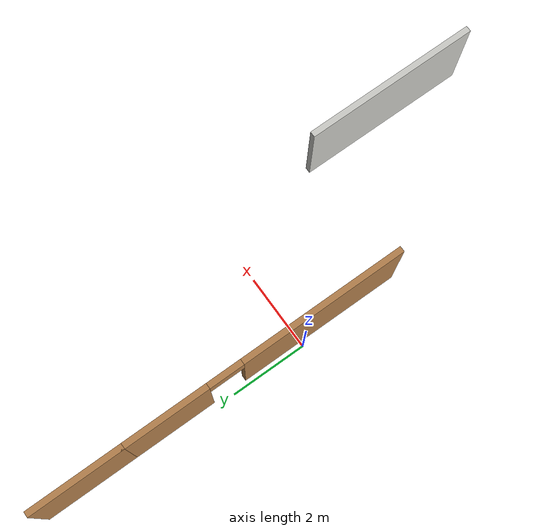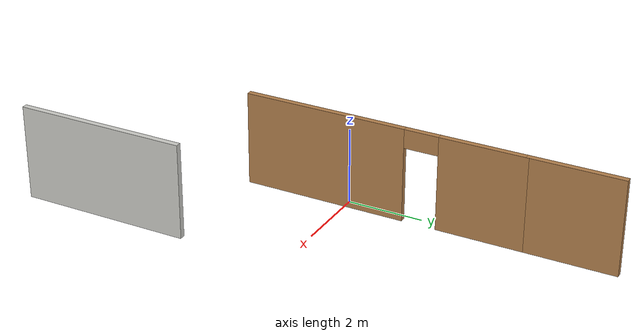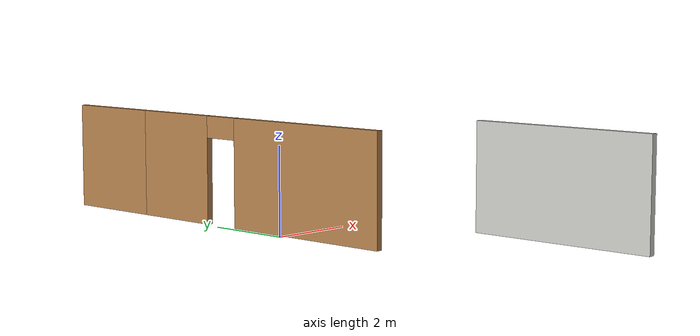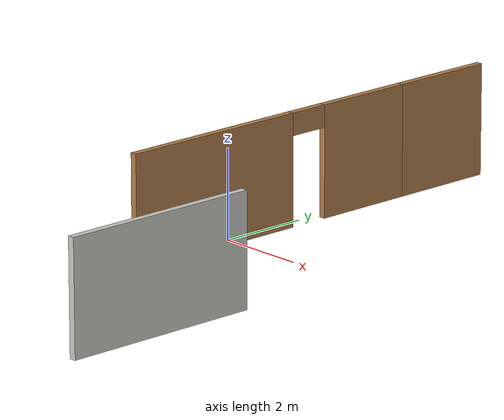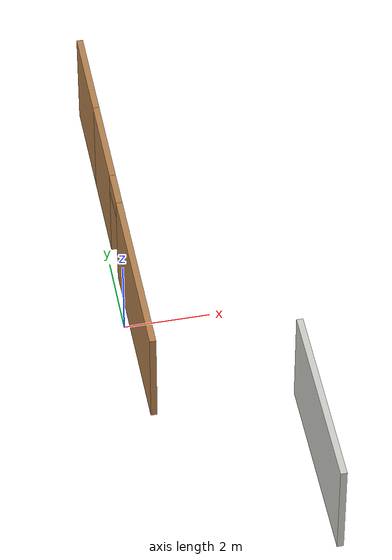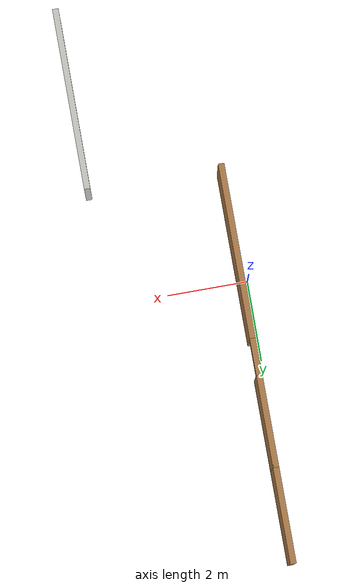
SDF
<?xml version='1.0'?>
<sdf version='1.7'>
  <model name='models'>
    <link name='Wall_23'>
      <pose>0.198577 5.89558 0 0 -0 1.5708</pose>
      <self_collide>0</self_collide>
      <enable_wind>0</enable_wind>
      <kinematic>0</kinematic>
      <inertial>
        <inertia>
          <ixx>0</ixx>
          <ixy>0</ixy>
          <ixz>0</ixz>
          <iyy>0</iyy>
          <iyz>0</iyz>
          <izz>0</izz>
        </inertia>
        <mass>0</mass>
        <pose>0 0 0 0 -0 0</pose>
      </inertial>
      <visual name='Wall_23_Visual'>
        <pose>0 0 1.25 0 -0 0</pose>
        <geometry>
          <box>
            <size>2.43974 0.15 2.5</size>
          </box>
        </geometry>
        <material>
          <script>
            <uri>file://media/materials/scripts/gazebo.material</uri>
            <name>Gazebo/Wood</name>
          </script>
          <ambient>1 1 1 1</ambient>
          <shader type='pixel'/>
        </material>
        <meta>
          <layer>0</layer>
        </meta>
        <transparency>0</transparency>
        <cast_shadows>1</cast_shadows>
      </visual>
      <collision name='Wall_23_Collision'>
        <laser_retro>0</laser_retro>
        <max_contacts>10</max_contacts>
        <pose>0 0 1.25 0 -0 0</pose>
        <geometry>
          <box>
            <size>2.43974 0.15 2.5</size>
          </box>
        </geometry>
        <surface>
          <friction>
            <ode>
              <mu>1</mu>
              <mu2>1</mu2>
              <fdir1>0 0 0</fdir1>
              <slip1>0</slip1>
              <slip2>0</slip2>
            </ode>
            <torsional>
              <coefficient>1</coefficient>
              <patch_radius>0</patch_radius>
              <surface_radius>0</surface_radius>
              <use_patch_radius>1</use_patch_radius>
              <ode>
                <slip>0</slip>
              </ode>
            </torsional>
          </friction>
          <bounce>
            <restitution_coefficient>0</restitution_coefficient>
            <threshold>1e+06</threshold>
          </bounce>
          <contact>
            <collide_without_contact>0</collide_without_contact>
            <collide_without_contact_bitmask>1</collide_without_contact_bitmask>
            <collide_bitmask>1</collide_bitmask>
            <ode>
              <soft_cfm>0</soft_cfm>
              <soft_erp>0.2</soft_erp>
              <kp>1e+13</kp>
              <kd>1</kd>
              <max_vel>0.01</max_vel>
              <min_depth>0</min_depth>
            </ode>
            <bullet>
              <split_impulse>1</split_impulse>
              <split_impulse_penetration_threshold>-0.01</split_impulse_penetration_threshold>
              <soft_cfm>0</soft_cfm>
              <soft_erp>0.2</soft_erp>
              <kp>1e+13</kp>
              <kd>1</kd>
            </bullet>
          </contact>
        </surface>
      </collision>
    </link>
    <link name='Wall_30'>
      <pose>3.5114 -4.95073 0 0 0 -1.5708</pose>
      <self_collide>0</self_collide>
      <enable_wind>0</enable_wind>
      <kinematic>0</kinematic>
      <inertial>
        <inertia>
          <ixx>0</ixx>
          <ixy>0</ixy>
          <ixz>0</ixz>
          <iyy>0</iyy>
          <iyz>0</iyz>
          <izz>0</izz>
        </inertia>
        <mass>0</mass>
        <pose>0 0 0 0 -0 0</pose>
      </inertial>
      <visual name='Wall_30_Visual'>
        <pose>0 0 1.25 0 -0 0</pose>
        <geometry>
          <box>
            <size>4.48465 0.15 2.5</size>
          </box>
        </geometry>
        <material>
          <script>
            <uri>file://media/materials/scripts/gazebo.material</uri>
            <name>Gazebo/CeilingTiled</name>
          </script>
          <ambient>1 1 1 1</ambient>
          <shader type='pixel'/>
        </material>
        <meta>
          <layer>0</layer>
        </meta>
        <transparency>0</transparency>
        <cast_shadows>1</cast_shadows>
      </visual>
      <collision name='Wall_30_Collision'>
        <laser_retro>0</laser_retro>
        <max_contacts>10</max_contacts>
        <pose>0 0 1.25 0 -0 0</pose>
        <geometry>
          <box>
            <size>4.48465 0.15 2.5</size>
          </box>
        </geometry>
        <surface>
          <friction>
            <ode>
              <mu>1</mu>
              <mu2>1</mu2>
              <fdir1>0 0 0</fdir1>
              <slip1>0</slip1>
              <slip2>0</slip2>
            </ode>
            <torsional>
              <coefficient>1</coefficient>
              <patch_radius>0</patch_radius>
              <surface_radius>0</surface_radius>
              <use_patch_radius>1</use_patch_radius>
              <ode>
                <slip>0</slip>
              </ode>
            </torsional>
          </friction>
          <bounce>
            <restitution_coefficient>0</restitution_coefficient>
            <threshold>1e+06</threshold>
          </bounce>
          <contact>
            <collide_without_contact>0</collide_without_contact>
            <collide_without_contact_bitmask>1</collide_without_contact_bitmask>
            <collide_bitmask>1</collide_bitmask>
            <ode>
              <soft_cfm>0</soft_cfm>
              <soft_erp>0.2</soft_erp>
              <kp>1e+13</kp>
              <kd>1</kd>
              <max_vel>0.01</max_vel>
              <min_depth>0</min_depth>
            </ode>
            <bullet>
              <split_impulse>1</split_impulse>
              <split_impulse_penetration_threshold>-0.01</split_impulse_penetration_threshold>
              <soft_cfm>0</soft_cfm>
              <soft_erp>0.2</soft_erp>
              <kp>1e+13</kp>
              <kd>1</kd>
            </bullet>
          </contact>
        </surface>
      </collision>
    </link>
    <link name='Wall_32'>
      <pose>0.198575 1.00599 0 0 0 -1.5708</pose>
      <self_collide>0</self_collide>
      <enable_wind>0</enable_wind>
      <kinematic>0</kinematic>
      <visual name='Wall_32_Visual_2'>
        <pose>-1.0251 0 2.25 0 -0 0</pose>
        <geometry>
          <box>
            <size>0.9 0.15 0.5</size>
          </box>
        </geometry>
        <material>
          <script>
            <uri>file://media/materials/scripts/gazebo.material</uri>
            <name>Gazebo/Wood</name>
          </script>
          <ambient>0.996078 0.47451 0.0196078 1</ambient>
          <shader type='pixel'/>
        </material>
        <meta>
          <layer>0</layer>
        </meta>
        <transparency>0</transparency>
        <cast_shadows>1</cast_shadows>
      </visual>
      <visual name='Wall_32_Visual_0'>
        <pose>-2.61255 0 1.25 0 -0 0</pose>
        <geometry>
          <box>
            <size>2.2749 0.15 2.5</size>
          </box>
        </geometry>
        <material>
          <script>
            <uri>file://media/materials/scripts/gazebo.material</uri>
            <name>Gazebo/Wood</name>
          </script>
          <ambient>0.996078 0.47451 0.0196078 1</ambient>
          <shader type='pixel'/>
        </material>
        <meta>
          <layer>0</layer>
        </meta>
        <transparency>0</transparency>
        <cast_shadows>1</cast_shadows>
      </visual>
      <visual name='Wall_32_Visual_1'>
        <pose>1.58745 0 1.25 0 -0 0</pose>
        <geometry>
          <box>
            <size>4.3251 0.15 2.5</size>
          </box>
        </geometry>
        <material>
          <script>
            <uri>file://media/materials/scripts/gazebo.material</uri>
            <name>Gazebo/Wood</name>
          </script>
          <ambient>0.996078 0.47451 0.0196078 1</ambient>
          <shader type='pixel'/>
        </material>
        <meta>
          <layer>0</layer>
        </meta>
        <transparency>0</transparency>
        <cast_shadows>1</cast_shadows>
      </visual>
      <collision name='Wall_32_Collision_0'>
        <laser_retro>0</laser_retro>
        <max_contacts>10</max_contacts>
        <pose>-2.61255 0 1.25 0 -0 0</pose>
        <geometry>
          <box>
            <size>2.2749 0.15 2.5</size>
          </box>
        </geometry>
        <surface>
          <friction>
            <ode>
              <mu>1</mu>
              <mu2>1</mu2>
              <fdir1>0 0 0</fdir1>
              <slip1>0</slip1>
              <slip2>0</slip2>
            </ode>
            <torsional>
              <coefficient>1</coefficient>
              <patch_radius>0</patch_radius>
              <surface_radius>0</surface_radius>
              <use_patch_radius>1</use_patch_radius>
              <ode>
                <slip>0</slip>
              </ode>
            </torsional>
          </friction>
          <bounce>
            <restitution_coefficient>0</restitution_coefficient>
            <threshold>1e+06</threshold>
          </bounce>
          <contact>
            <collide_without_contact>0</collide_without_contact>
            <collide_without_contact_bitmask>1</collide_without_contact_bitmask>
            <collide_bitmask>1</collide_bitmask>
            <ode>
              <soft_cfm>0</soft_cfm>
              <soft_erp>0.2</soft_erp>
              <kp>1e+13</kp>
              <kd>1</kd>
              <max_vel>0.01</max_vel>
              <min_depth>0</min_depth>
            </ode>
            <bullet>
              <split_impulse>1</split_impulse>
              <split_impulse_penetration_threshold>-0.01</split_impulse_penetration_threshold>
              <soft_cfm>0</soft_cfm>
              <soft_erp>0.2</soft_erp>
              <kp>1e+13</kp>
              <kd>1</kd>
            </bullet>
          </contact>
        </surface>
      </collision>
      <collision name='Wall_32_Collision_1'>
        <laser_retro>0</laser_retro>
        <max_contacts>10</max_contacts>
        <pose>1.58745 0 1.25 0 -0 0</pose>
        <geometry>
          <box>
            <size>4.3251 0.15 2.5</size>
          </box>
        </geometry>
        <surface>
          <friction>
            <ode>
              <mu>1</mu>
              <mu2>1</mu2>
              <fdir1>0 0 0</fdir1>
              <slip1>0</slip1>
              <slip2>0</slip2>
            </ode>
            <torsional>
              <coefficient>1</coefficient>
              <patch_radius>0</patch_radius>
              <surface_radius>0</surface_radius>
              <use_patch_radius>1</use_patch_radius>
              <ode>
                <slip>0</slip>
              </ode>
            </torsional>
          </friction>
          <bounce>
            <restitution_coefficient>0</restitution_coefficient>
            <threshold>1e+06</threshold>
          </bounce>
          <contact>
            <collide_without_contact>0</collide_without_contact>
            <collide_without_contact_bitmask>1</collide_without_contact_bitmask>
            <collide_bitmask>1</collide_bitmask>
            <ode>
              <soft_cfm>0</soft_cfm>
              <soft_erp>0.2</soft_erp>
              <kp>1e+13</kp>
              <kd>1</kd>
              <max_vel>0.01</max_vel>
              <min_depth>0</min_depth>
            </ode>
            <bullet>
              <split_impulse>1</split_impulse>
              <split_impulse_penetration_threshold>-0.01</split_impulse_penetration_threshold>
              <soft_cfm>0</soft_cfm>
              <soft_erp>0.2</soft_erp>
              <kp>1e+13</kp>
              <kd>1</kd>
            </bullet>
          </contact>
        </surface>
      </collision>
      <collision name='Wall_32_Collision_2'>
        <laser_retro>0</laser_retro>
        <max_contacts>10</max_contacts>
        <pose>-1.0251 0 2.25 0 -0 0</pose>
        <geometry>
          <box>
            <size>0.9 0.15 0.5</size>
          </box>
        </geometry>
        <surface>
          <friction>
            <ode>
              <mu>1</mu>
              <mu2>1</mu2>
              <fdir1>0 0 0</fdir1>
              <slip1>0</slip1>
              <slip2>0</slip2>
            </ode>
            <torsional>
              <coefficient>1</coefficient>
              <patch_radius>0</patch_radius>
              <surface_radius>0</surface_radius>
              <use_patch_radius>1</use_patch_radius>
              <ode>
                <slip>0</slip>
              </ode>
            </torsional>
          </friction>
          <bounce>
            <restitution_coefficient>0</restitution_coefficient>
            <threshold>1e+06</threshold>
          </bounce>
          <contact>
            <collide_without_contact>0</collide_without_contact>
            <collide_without_contact_bitmask>1</collide_without_contact_bitmask>
            <collide_bitmask>1</collide_bitmask>
            <ode>
              <soft_cfm>0</soft_cfm>
              <soft_erp>0.2</soft_erp>
              <kp>1e+13</kp>
              <kd>1</kd>
              <max_vel>0.01</max_vel>
              <min_depth>0</min_depth>
            </ode>
            <bullet>
              <split_impulse>1</split_impulse>
              <split_impulse_penetration_threshold>-0.01</split_impulse_penetration_threshold>
              <soft_cfm>0</soft_cfm>
              <soft_erp>0.2</soft_erp>
              <kp>1e+13</kp>
              <kd>1</kd>
            </bullet>
          </contact>
        </surface>
      </collision>
    </link>
    <static>1</static>
    <allow_auto_disable>1</allow_auto_disable>
  </model>
</sdf>
